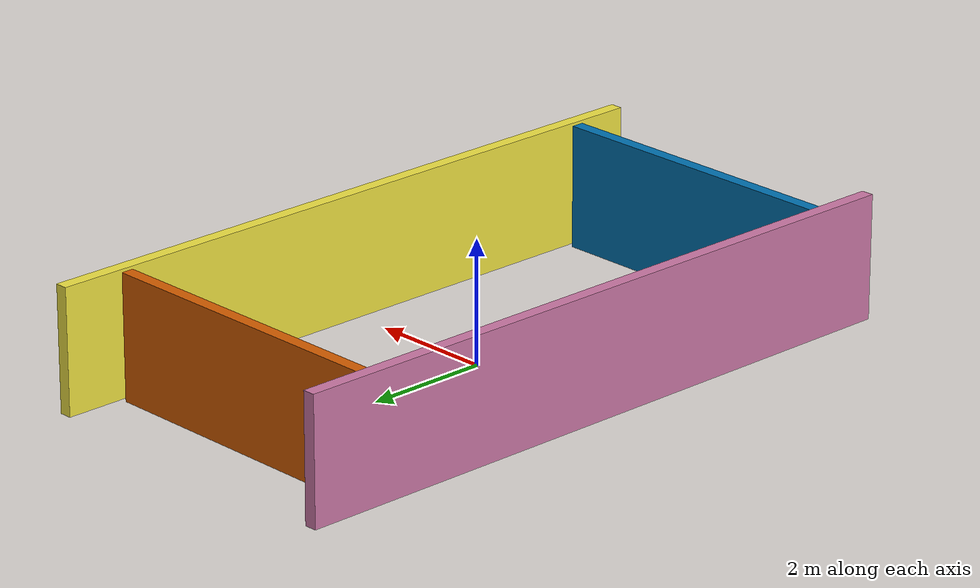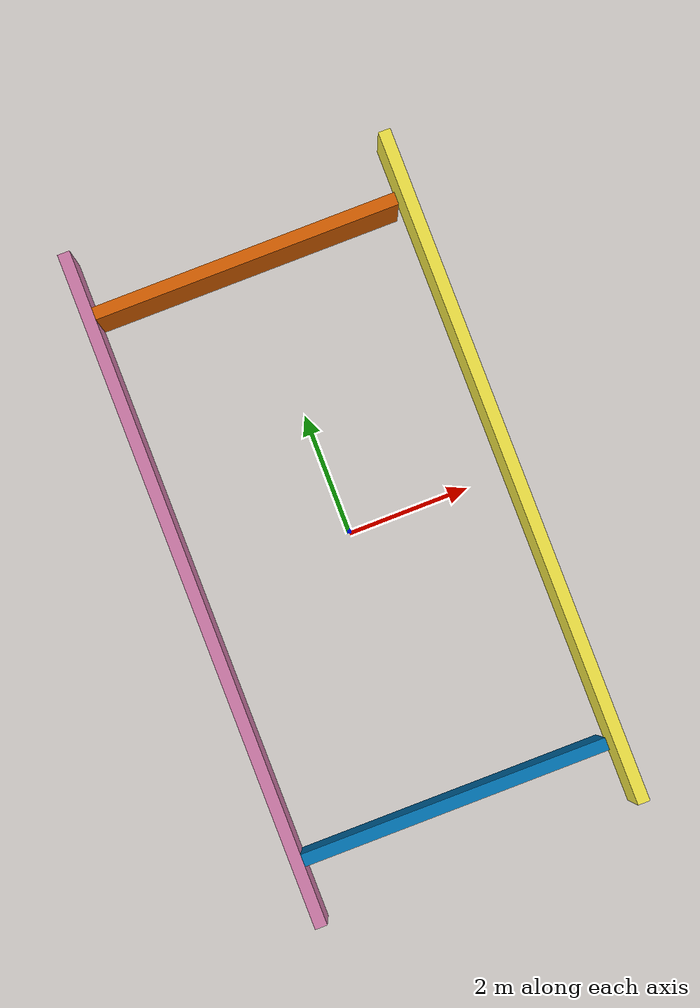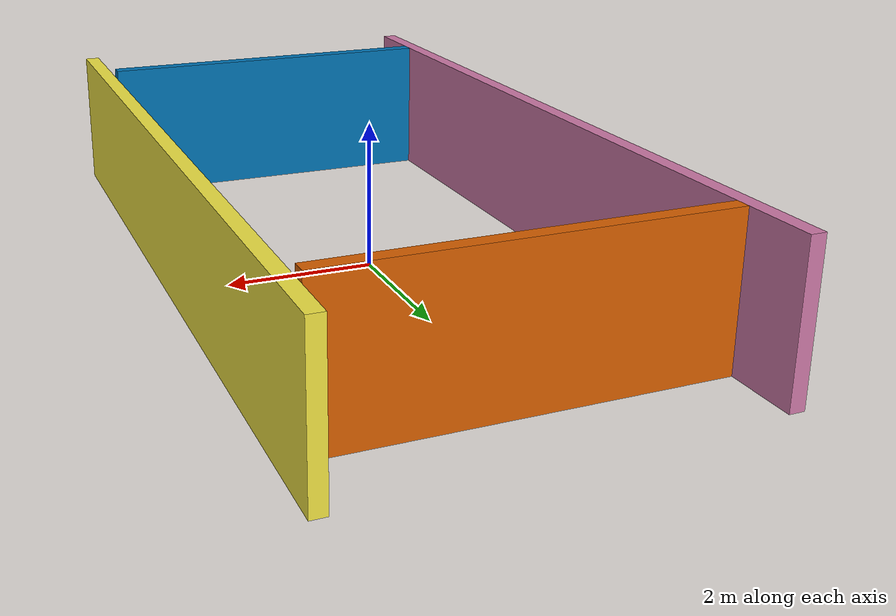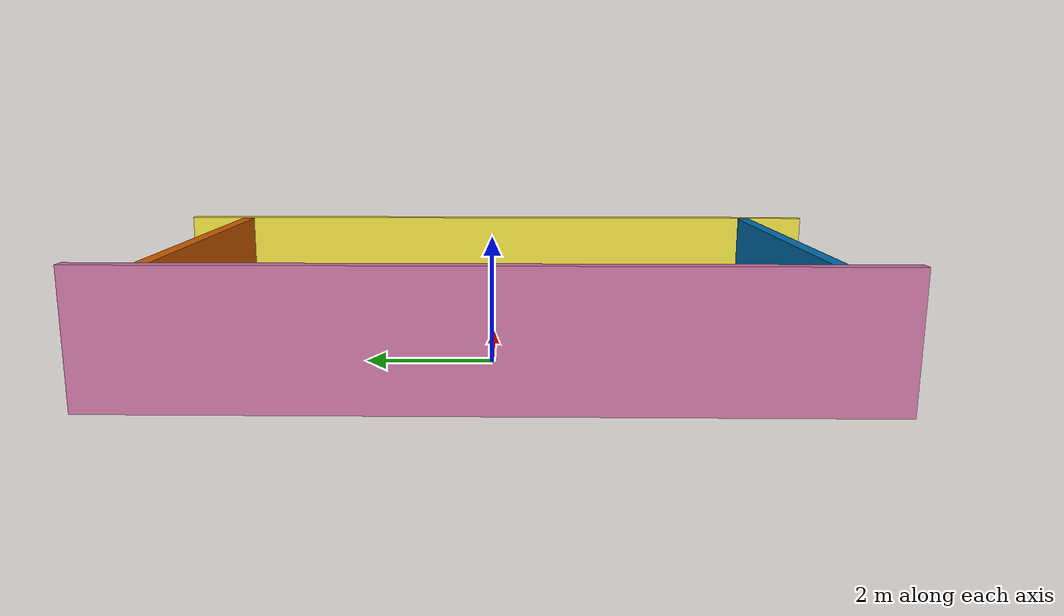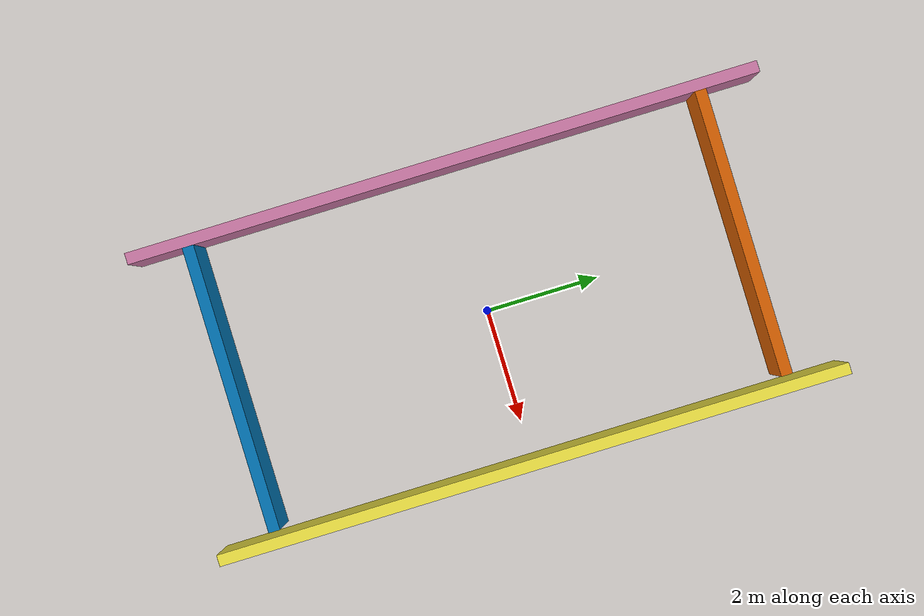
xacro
<?xml version="1.0" encoding="UTF-8"?>
<robot xmlns:xacro="http://ros.org/wiki/xacro" name="singleobj3_env">
  <link name="world" />
  <xacro:include filename="$(find env_description)/singleobj3_env/assets/rigid/broom.xacro" />

  <xacro:broom prefix="broom" xyz="0 0 0" rpy="0 0 0" />

   <link name="wall_link_north">
    <visual>
      <origin xyz="0 0 0" rpy="0 0 0" />
      <geometry>
        <box size="0.2 11.1 2" />
      </geometry>
    </visual>
    <collision>
      <origin xyz="0 0 0" rpy="0 0 0" />
      <geometry>
        <box size="0.2 11.1 2" />
      </geometry>
    </collision>
  </link>
  <joint name="north_wall_world_joint" type="fixed">
    <origin xyz="2.7 0 1" rpy="0 0 0" />
    <parent link="world" />
    <child link="wall_link_north" />
    <axis xyz="0 0 0" />
  </joint>

  <link name="wall_link_east">
    <visual>
      <origin xyz="0.5 0 0" rpy="0 0 0" />
      <geometry>
        <box size="0.2 5 2" />
      </geometry>
    </visual>
    <collision>
      <origin xyz="0.5 0 0" rpy="0 0 0" />
      <geometry>
        <box size="0.2 5 2" />
      </geometry>
    </collision>
  </link>
  <joint name="east_wall_world_joint" type="fixed">
    <origin xyz="0 -5 1" rpy="0 0 1.57" />
    <parent link="world" />
    <child link="wall_link_east" />
    <axis xyz="0 0 0" />
  </joint>

  <link name="wall_link_west">
    <visual>
      <origin xyz="0.5 0 0" rpy="0 0 0" />
      <geometry>
        <box size="0.2 5 2" />
      </geometry>
    </visual>
    <collision>
      <origin xyz="0.5 0 0" rpy="0 0 0" />
      <geometry>
        <box size="0.2 5 2" />
      </geometry>
    </collision>
  </link>
  <joint name="west_wall_world_joint" type="fixed">
    <origin xyz="0 4 1" rpy="0 0 1.57" />
    <parent link="world" />
    <child link="wall_link_west" />
    <axis xyz="0 0 0" />
  </joint>

  <link name="wall_link_south">
    <visual>
      <origin xyz="0 0 0" rpy="0 0 0" />
      <geometry>
        <box size="0.2 11.1 2" />
      </geometry>
    </visual>
    <collision>
      <origin xyz="0 0 0" rpy="0 0 0" />
      <geometry>
        <box size="0.2 11.1 2" />
      </geometry>
    </collision>
  </link>
  <joint name="south_wall_world_joint" type="fixed">
    <origin xyz="-2.6 0 1" rpy="0 0 0" />
    <parent link="world" />
    <child link="wall_link_south" />
    <axis xyz="0 0 0" />
  </joint>
</robot>

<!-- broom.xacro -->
<robot name="robot_stick" xmlns:xacro="http://www.ros.org/wiki/xacro">
    <xacro:macro name="broom" params="prefix:=stick parent:=world scale:=1 xyz rpy">
        <joint name="${prefix}_world_joint" type="fixed">
            <origin xyz="${xyz}" rpy="${rpy}" />
            <parent link="${parent}" />
            <child link="${prefix}_base_link" />
        </joint>

        <link name="${prefix}_base_link" />
        <joint name="${prefix}_base_joint" type="fixed">
            <origin xyz="0 0 1" rpy="0 0 0" />
            <parent link="${prefix}_base_link" />
            <child link="${prefix}_stick" />
        </joint>

        <link name="${prefix}_stick">
            <visual>
                <origin xyz="0 0 0" rpy="0 0 0" />
                <geometry>
                    <cylinder radius="0.02" length="0.64"/>
                </geometry>
            </visual>
            <collision>
                <origin xyz="0 0 0" rpy="0 0 0" />
                <geometry>
                    <cylinder radius="0.02" length="0.64"/>
                </geometry>
            </collision>
        </link>
    </xacro:macro>
</robot>
